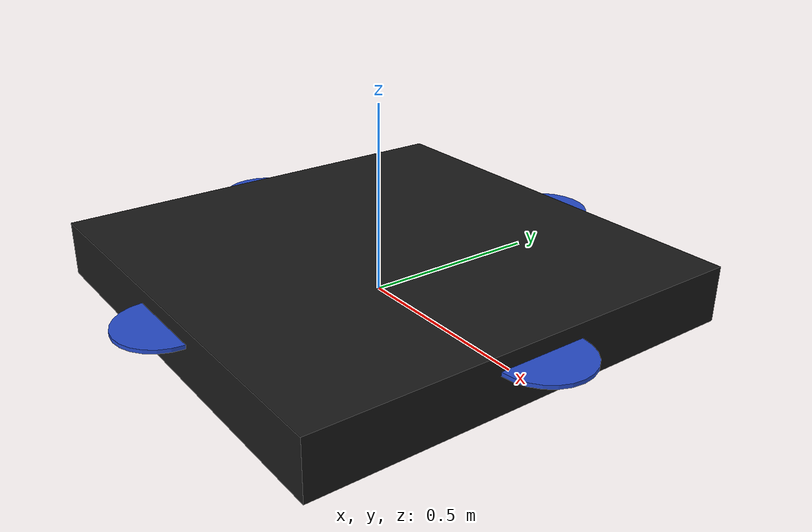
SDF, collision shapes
<sdf version='1.6'>
  <model name='X3'>
    <!-- Model pose in world -->
    <pose>0 0 0.053302 0 0 0</pose>

    <!-- Base link + visuals   -->
    <link name='X3/base_link'>
      <pose>0 0 0 0 0 0</pose>

      <inertial>
        <pose>0 0 0 0 0 0</pose>
        <mass>4.6</mass>
        <inertia>
          <ixx>0.423</ixx>
          <ixy>0</ixy>
          <ixz>0</ixz>
          <iyy>0.423</iyy>
          <iyz>0</iyz>
          <izz>0.828</izz>
        </inertia>
      </inertial>

      <collision name='X3/base_link_inertia_collision'>
        <pose>0 0 0 0 0 0</pose>
        <geometry>
          <box>
            <size>1.2 1.2 0.15</size>
          </box>
        </geometry>
      </collision>

      <visual name='X3/base_link_inertia_visual'>
        <pose>0 0 0 0 0 0</pose>
        <geometry>
          <mesh>
            <scale>1 1 1</scale>
            <uri>model://x3/meshes/x3.dae</uri>
          </mesh>
        </geometry>
      </visual>

      <!-- Octocopter carbon arms for visual reference -->
      <visual name='arm_0'>
        <pose>0.3 0.0 0 0 1.5708 0</pose>
        <geometry>
          <cylinder>
            <radius>0.02</radius>
            <length>0.6</length>
          </cylinder>
        </geometry>
        <material>
          <diffuse>0.1 0.1 0.1 1</diffuse>
        </material>
      </visual>

      <visual name='arm_1'>
        <pose>0.2121 0.2121 0 0 1.5708 0.7854</pose>
        <geometry>
          <cylinder>
            <radius>0.02</radius>
            <length>0.6</length>
          </cylinder>
        </geometry>
        <material>
          <diffuse>0.1 0.1 0.1 1</diffuse>
        </material>
      </visual>

      <visual name='arm_2'>
        <pose>0.0 0.3 0 0 1.5708 1.5708</pose>
        <geometry>
          <cylinder>
            <radius>0.02</radius>
            <length>0.6</length>
          </cylinder>
        </geometry>
        <material>
          <diffuse>0.1 0.1 0.1 1</diffuse>
        </material>
      </visual>

      <visual name='arm_3'>
        <pose>-0.2121 0.2121 0 0 1.5708 2.35619</pose>
        <geometry>
          <cylinder>
            <radius>0.02</radius>
            <length>0.6</length>
          </cylinder>
        </geometry>
        <material>
          <diffuse>0.1 0.1 0.1 1</diffuse>
        </material>
      </visual>

      <visual name='arm_4'>
        <pose>-0.3 0.0 0 0 1.5708 3.14159</pose>
        <geometry>
          <cylinder>
            <radius>0.02</radius>
            <length>0.6</length>
          </cylinder>
        </geometry>
        <material>
          <diffuse>0.1 0.1 0.1 1</diffuse>
        </material>
      </visual>

      <visual name='arm_5'>
        <pose>-0.2121 -0.2121 0 0 1.5708 -2.35619</pose>
        <geometry>
          <cylinder>
            <radius>0.02</radius>
            <length>0.6</length>
          </cylinder>
        </geometry>
        <material>
          <diffuse>0.1 0.1 0.1 1</diffuse>
        </material>
      </visual>

      <visual name='arm_6'>
        <pose>0.0 -0.3 0 0 1.5708 -1.5708</pose>
        <geometry>
          <cylinder>
            <radius>0.02</radius>
            <length>0.6</length>
          </cylinder>
        </geometry>
        <material>
          <diffuse>0.1 0.1 0.1 1</diffuse>
        </material>
      </visual>

      <visual name='arm_7'>
        <pose>0.2121 -0.2121 0 0 1.5708 -0.7854</pose>
        <geometry>
          <cylinder>
            <radius>0.02</radius>
            <length>0.6</length>
          </cylinder>
        </geometry>
        <material>
          <diffuse>0.1 0.1 0.1 1</diffuse>
        </material>
      </visual>

      <!-- IMU Sensor -->
      <sensor name="imu_sensor" type="imu">
        <pose>0 0 0 0 0 0</pose>
        <always_on>1</always_on>
        <update_rate>100</update_rate>
        <topic>/imu/data</topic>
        <imu>
          <angular_velocity>
            <x>
              <noise type="gaussian">
                <mean>0.0</mean>
                <stddev>0.0001</stddev>
              </noise>
            </x>
            <y>
              <noise type="gaussian">
                <mean>0.0</mean>
                <stddev>0.0001</stddev>
              </noise>
            </y>
            <z>
              <noise type="gaussian">
                <mean>0.0</mean>
                <stddev>0.0001</stddev>
              </noise>
            </z>
          </angular_velocity>
          <linear_acceleration>
            <x>
              <noise type="gaussian">
                <mean>0.0</mean>
                <stddev>0.001</stddev>
              </noise>
            </x>
            <y>
              <noise type="gaussian">
                <mean>0.0</mean>
                <stddev>0.001</stddev>
              </noise>
            </y>
            <z>
              <noise type="gaussian">
                <mean>0.0</mean>
                <stddev>0.001</stddev>
              </noise>
            </z>
          </linear_acceleration>
          <enable_orientation>true</enable_orientation>
        </imu>
      </sensor>
    </link>

    <!-- ELP-USB3DGS1200P01-V90 Stereo Camera Configuration              -->
    <!-- Calibrated intrinsics (usb_stereo_camera.yaml):                 -->
    <!--   fx=fy≈369.36, cx≈330.62, cy≈269.47                            -->
    <!-- Resolution: 640x480, Baseline ≈ 0.061m (geometry + SLAM config) -->
    <!-- HFOV ≈ 1.426 rad (derived from fx & width)                      -->
    <!-- Mount: 10 cm forward of body origin, pitched down 45 deg        -->

    <!-- Left Camera Link -->
    <link name='stereo_camera_left_link'>
      <!-- 10 cm forward, +Y (left), pitched down 45 deg -->
      <pose relative_to='X3/base_link'>0.10 0.0305 0 0 0.785398 0</pose>

      <inertial>
        <pose>0 0 0 0 0 0</pose>
        <mass>0.001</mass>
        <inertia>
          <ixx>1e-6</ixx>
          <ixy>0</ixy>
          <ixz>0</ixz>
          <iyy>1e-6</iyy>
          <iyz>0</iyz>
          <izz>1e-6</izz>
        </inertia>
      </inertial>

      <sensor name="camera_left" type="camera">
        <pose>0 0 0 0 0 0</pose>
        <always_on>1</always_on>
        <update_rate>30</update_rate>
        <topic>/camera/left/image_raw</topic>

        <camera>
          <horizontal_fov>1.426</horizontal_fov>
          <distortion>
            <k1>0.0</k1>
            <k2>0.0</k2>
            <k3>0.0</k3>
            <p1>0.0</p1>
            <p2>0.0</p2>
            <center>0.517 0.561</center>
          </distortion>
          <image>
            <width>640</width>
            <height>480</height>
            <format>R8G8B8</format>
          </image>
          <clip>
            <near>0.5</near>
            <far>300</far>
          </clip>
          <noise>
            <type>gaussian</type>
            <mean>0</mean>
            <stddev>0.005</stddev>
          </noise>

          <frame_id>X3/stereo_camera_left_optical</frame_id>
          <camera_info_topic>/camera/left/camera_info</camera_info_topic>
        </camera>
      </sensor>
    </link>

    <!-- Right Camera Link -->
    <link name='stereo_camera_right_link'>
      <!-- 10 cm forward, -Y (right), pitched down 45 deg -->
      <pose relative_to='X3/base_link'>0.10 -0.0305 0 0 0.785398 0</pose>

      <inertial>
        <pose>0 0 0 0 0 0</pose>
        <mass>0.001</mass>
        <inertia>
          <ixx>1e-6</ixx>
          <ixy>0</ixy>
          <ixz>0</ixz>
          <iyy>1e-6</iyy>
          <iyz>0</iyz>
          <izz>1e-6</izz>
        </inertia>
      </inertial>

      <sensor name="camera_right" type="camera">
        <pose>0 0 0 0 0 0</pose>
        <always_on>1</always_on>
        <update_rate>30</update_rate>
        <topic>/camera/right/image_raw</topic>

        <camera>
          <horizontal_fov>1.426</horizontal_fov>
          <distortion>
            <k1>0.0</k1>
            <k2>0.0</k2>
            <k3>0.0</k3>
            <p1>0.0</p1>
            <p2>0.0</p2>
            <center>0.517 0.561</center>
          </distortion>
          <image>
            <width>640</width>
            <height>480</height>
            <format>R8G8B8</format>
          </image>
          <clip>
            <near>0.5</near>
            <far>300</far>
          </clip>
          <noise>
            <type>gaussian</type>
            <mean>0</mean>
            <stddev>0.005</stddev>
          </noise>

          <frame_id>X3/stereo_camera_right_optical</frame_id>
          <camera_info_topic>/camera/right/camera_info</camera_info_topic>
        </camera>
      </sensor>
    </link>

    <!-- Optical frames for ROS convention -->
    <!-- Keep these as a pure transform relative to the camera links -->
    <link name='stereo_camera_left_optical'>
      <pose relative_to='stereo_camera_left_link'>0 0 0 -1.5708 0 -1.5708</pose>
      <inertial>
        <mass>0.001</mass>
        <inertia>
          <ixx>1e-6</ixx><ixy>0</ixy><ixz>0</ixz>
          <iyy>1e-6</iyy><iyz>0</iyz><izz>1e-6</izz>
        </inertia>
      </inertial>
    </link>

    <link name='stereo_camera_right_optical'>
      <pose relative_to='stereo_camera_right_link'>0 0 0 -1.5708 0 -1.5708</pose>
      <inertial>
        <mass>0.001</mass>
        <inertia>
          <ixx>1e-6</ixx><ixy>0</ixy><ixz>0</ixz>
          <iyy>1e-6</iyy><iyz>0</iyz><izz>1e-6</izz>
        </inertia>
      </inertial>
    </link>

    <!-- Fixed joints for stereo cameras -->
    <joint name='stereo_camera_left_joint' type='fixed'>
      <child>stereo_camera_left_link</child>
      <parent>X3/base_link</parent>
    </joint>

    <joint name='stereo_camera_right_joint' type='fixed'>
      <child>stereo_camera_right_link</child>
      <parent>X3/base_link</parent>
    </joint>

    <joint name='stereo_camera_left_optical_joint' type='fixed'>
      <child>stereo_camera_left_optical</child>
      <parent>stereo_camera_left_link</parent>
    </joint>

    <joint name='stereo_camera_right_optical_joint' type='fixed'>
      <child>stereo_camera_right_optical</child>
      <parent>stereo_camera_right_link</parent>
    </joint>

    <!-- Rotors (0..7)         -->

    <link name='X3/rotor_0'>
      <pose relative_to='X3/base_link'>0.6 0.0 0.03 0 0 0</pose>
      <inertial>
        <pose>0 0 0 0 0 0</pose>
        <mass>0.05</mass>
        <inertia>
          <ixx>9.75e-06</ixx>
          <ixy>0</ixy>
          <ixz>0</ixz>
          <iyy>4.17041e-04</iyy>
          <iyz>0</iyz>
          <izz>4.26041e-04</izz>
        </inertia>
      </inertial>
      <collision name='X3/rotor_0_collision'>
        <pose>0 0 0 0 0 0</pose>
        <geometry>
          <cylinder>
            <length>0.01</length>
            <radius>0.12</radius>
          </cylinder>
        </geometry>
      </collision>
      <visual name='X3/rotor_0_visual'>
        <pose>0 0 0 0 0 0</pose>
        <geometry>
          <mesh>
            <scale>0.12 0.12 0.12</scale>
            <uri>model://x3/meshes/propeller_ccw.dae</uri>
          </mesh>
        </geometry>
        <material>
          <script>
            <name>Gazebo/Blue</name>
            <uri>file://media/materials/scripts/gazebo.material</uri>
          </script>
        </material>
      </visual>
    </link>
    <joint name='X3/rotor_0_joint' type='revolute'>
      <child>X3/rotor_0</child>
      <parent>X3/base_link</parent>
      <axis>
        <xyz>0 0 1</xyz>
        <limit>
          <lower>-1e+16</lower>
          <upper>1e+16</upper>
        </limit>
        <use_parent_model_frame>1</use_parent_model_frame>
      </axis>
    </joint>

    <link name='X3/rotor_1'>
      <pose relative_to='X3/base_link'>0.4243 0.4243 0.03 0 0 0</pose>
      <inertial>
        <pose>0 0 0 0 0 0</pose>
        <mass>0.05</mass>
        <inertia>
          <ixx>9.75e-06</ixx>
          <ixy>0</ixy>
          <ixz>0</ixz>
          <iyy>4.17041e-04</iyy>
          <iyz>0</iyz>
          <izz>4.26041e-04</izz>
        </inertia>
      </inertial>
      <collision name='X3/rotor_1_collision'>
        <pose>0 0 0 0 0 0</pose>
        <geometry>
          <cylinder>
            <length>0.01</length>
            <radius>0.12</radius>
          </cylinder>
        </geometry>
      </collision>
      <visual name='X3/rotor_1_visual'>
        <pose>0 0 0 0 0 0</pose>
        <geometry>
          <mesh>
            <scale>0.12 0.12 0.12</scale>
            <uri>model://x3/meshes/propeller_cw.dae</uri>
          </mesh>
        </geometry>
        <material>
          <script>
            <name>Gazebo/Red</name>
            <uri>file://media/materials/scripts/gazebo.material</uri>
          </script>
        </material>
      </visual>
    </link>
    <joint name='X3/rotor_1_joint' type='revolute'>
      <child>X3/rotor_1</child>
      <parent>X3/base_link</parent>
      <axis>
        <xyz>0 0 1</xyz>
        <limit>
          <lower>-1e+16</lower>
          <upper>1e+16</upper>
        </limit>
        <use_parent_model_frame>1</use_parent_model_frame>
      </axis>
    </joint>

    <link name='X3/rotor_2'>
      <pose relative_to='X3/base_link'>0.0 0.6 0.03 0 0 0</pose>
      <inertial>
        <pose>0 0 0 0 0 0</pose>
        <mass>0.05</mass>
        <inertia>
          <ixx>9.75e-06</ixx>
          <ixy>0</ixy>
          <ixz>0</ixz>
          <iyy>4.17041e-04</iyy>
          <iyz>0</iyz>
          <izz>4.26041e-04</izz>
        </inertia>
      </inertial>
      <collision name='X3/rotor_2_collision'>
        <pose>0 0 0 0 0 0</pose>
        <geometry>
          <cylinder>
            <length>0.01</length>
            <radius>0.12</radius>
          </cylinder>
        </geometry>
      </collision>
      <visual name='X3/rotor_2_visual'>
        <pose>0 0 0 0 0 0</pose>
        <geometry>
          <mesh>
            <scale>0.12 0.12 0.12</scale>
            <uri>model://x3/meshes/propeller_ccw.dae</uri>
          </mesh>
        </geometry>
        <material>
          <script>
            <name>Gazebo/Blue</name>
            <uri>file://media/materials/scripts/gazebo.material</uri>
          </script>
        </material>
      </visual>
    </link>
    <joint name='X3/rotor_2_joint' type='revolute'>
      <child>X3/rotor_2</child>
      <parent>X3/base_link</parent>
      <axis>
        <xyz>0 0 1</xyz>
        <limit>
          <lower>-1e+16</lower>
          <upper>1e+16</upper>
        </limit>
        <use_parent_model_frame>1</use_parent_model_frame>
      </axis>
    </joint>

    <link name='X3/rotor_3'>
      <pose relative_to='X3/base_link'>-0.4243 0.4243 0.03 0 0 0</pose>
      <inertial>
        <pose>0 0 0 0 0 0</pose>
        <mass>0.05</mass>
        <inertia>
          <ixx>9.75e-06</ixx>
          <ixy>0</ixy>
          <ixz>0</ixz>
          <iyy>4.17041e-04</iyy>
          <iyz>0</iyz>
          <izz>4.26041e-04</izz>
        </inertia>
      </inertial>
      <collision name='X3/rotor_3_collision'>
        <pose>0 0 0 0 0 0</pose>
        <geometry>
          <cylinder>
            <length>0.01</length>
            <radius>0.12</radius>
          </cylinder>
        </geometry>
      </collision>
      <visual name='X3/rotor_3_visual'>
        <pose>0 0 0 0 0 0</pose>
        <geometry>
          <mesh>
            <scale>0.12 0.12 0.12</scale>
            <uri>model://x3/meshes/propeller_cw.dae</uri>
          </mesh>
        </geometry>
        <material>
          <script>
            <name>Gazebo/Red</name>
            <uri>file://media/materials/scripts/gazebo.material</uri>
          </script>
        </material>
      </visual>
    </link>
    <joint name='X3/rotor_3_joint' type='revolute'>
      <child>X3/rotor_3</child>
      <parent>X3/base_link</parent>
      <axis>
        <xyz>0 0 1</xyz>
        <limit>
          <lower>-1e+16</lower>
          <upper>1e+16</upper>
        </limit>
        <use_parent_model_frame>1</use_parent_model_frame>
      </axis>
    </joint>

    <link name='X3/rotor_4'>
      <pose relative_to='X3/base_link'>-0.6 0.0 0.03 0 0 0</pose>
      <inertial>
        <pose>0 0 0 0 0 0</pose>
        <mass>0.05</mass>
        <inertia>
          <ixx>9.75e-06</ixx>
          <ixy>0</ixy>
          <ixz>0</ixz>
          <iyy>4.17041e-04</iyy>
          <iyz>0</iyz>
          <izz>4.26041e-04</izz>
        </inertia>
      </inertial>
      <collision name='X3/rotor_4_collision'>
        <pose>0 0 0 0 0 0</pose>
        <geometry>
          <cylinder>
            <length>0.01</length>
            <radius>0.12</radius>
          </cylinder>
        </geometry>
      </collision>
      <visual name='X3/rotor_4_visual'>
        <pose>0 0 0 0 0 0</pose>
        <geometry>
          <mesh>
            <scale>0.12 0.12 0.12</scale>
            <uri>model://x3/meshes/propeller_ccw.dae</uri>
          </mesh>
        </geometry>
        <material>
          <script>
            <name>Gazebo/Blue</name>
            <uri>file://media/materials/scripts/gazebo.material</uri>
          </script>
        </material>
      </visual>
    </link>
    <joint name='X3/rotor_4_joint' type='revolute'>
      <child>X3/rotor_4</child>
      <parent>X3/base_link</parent>
      <axis>
        <xyz>0 0 1</xyz>
        <limit>
          <lower>-1e+16</lower>
          <upper>1e+16</upper>
        </limit>
        <use_parent_model_frame>1</use_parent_model_frame>
      </axis>
    </joint>

    <link name='X3/rotor_5'>
      <pose relative_to='X3/base_link'>-0.4243 -0.4243 0.03 0 0 0</pose>
      <inertial>
        <pose>0 0 0 0 0 0</pose>
        <mass>0.05</mass>
        <inertia>
          <ixx>9.75e-06</ixx>
          <ixy>0</ixy>
          <ixz>0</ixz>
          <iyy>4.17041e-04</iyy>
          <iyz>0</iyz>
          <izz>4.26041e-04</izz>
        </inertia>
      </inertial>
      <collision name='X3/rotor_5_collision'>
        <pose>0 0 0 0 0 0</pose>
        <geometry>
          <cylinder>
            <length>0.01</length>
            <radius>0.12</radius>
          </cylinder>
        </geometry>
      </collision>
      <visual name='X3/rotor_5_visual'>
        <pose>0 0 0 0 0 0</pose>
        <geometry>
          <mesh>
            <scale>0.12 0.12 0.12</scale>
            <uri>model://x3/meshes/propeller_cw.dae</uri>
          </mesh>
        </geometry>
        <material>
          <script>
            <name>Gazebo/Red</name>
            <uri>file://media/materials/scripts/gazebo.material</uri>
          </script>
        </material>
      </visual>
    </link>
    <joint name='X3/rotor_5_joint' type='revolute'>
      <child>X3/rotor_5</child>
      <parent>X3/base_link</parent>
      <axis>
        <xyz>0 0 1</xyz>
        <limit>
          <lower>-1e+16</lower>
          <upper>1e+16</upper>
        </limit>
        <use_parent_model_frame>1</use_parent_model_frame>
      </axis>
    </joint>

    <link name='X3/rotor_6'>
      <pose relative_to='X3/base_link'>0.0 -0.6 0.03 0 0 0</pose>
      <inertial>
        <pose>0 0 0 0 0 0</pose>
        <mass>0.05</mass>
        <inertia>
          <ixx>9.75e-06</ixx>
          <ixy>0</ixy>
          <ixz>0</ixz>
          <iyy>4.17041e-04</iyy>
          <iyz>0</iyz>
          <izz>4.26041e-04</izz>
        </inertia>
      </inertial>
      <collision name='X3/rotor_6_collision'>
        <pose>0 0 0 0 0 0</pose>
        <geometry>
          <cylinder>
            <length>0.01</length>
            <radius>0.12</radius>
          </cylinder>
        </geometry>
      </collision>
      <visual name='X3/rotor_6_visual'>
        <pose>0 0 0 0 0 0</pose>
        <geometry>
          <mesh>
            <scale>0.12 0.12 0.12</scale>
            <uri>model://x3/meshes/propeller_ccw.dae</uri>
          </mesh>
        </geometry>
        <material>
          <script>
            <name>Gazebo/Blue</name>
            <uri>file://media/materials/scripts/gazebo.material</uri>
          </script>
        </material>
      </visual>
    </link>
    <joint name='X3/rotor_6_joint' type='revolute'>
      <child>X3/rotor_6</child>
      <parent>X3/base_link</parent>
      <axis>
        <xyz>0 0 1</xyz>
        <limit>
          <lower>-1e+16</lower>
          <upper>1e+16</upper>
        </limit>
        <use_parent_model_frame>1</use_parent_model_frame>
      </axis>
    </joint>

    <link name='X3/rotor_7'>
      <pose relative_to='X3/base_link'>0.4243 -0.4243 0.03 0 0 0</pose>
      <inertial>
        <pose>0 0 0 0 0 0</pose>
        <mass>0.05</mass>
        <inertia>
          <ixx>9.75e-06</ixx>
          <ixy>0</ixy>
          <ixz>0</ixz>
          <iyy>4.17041e-04</iyy>
          <iyz>0</iyz>
          <izz>4.26041e-04</izz>
        </inertia>
      </inertial>
      <collision name='X3/rotor_7_collision'>
        <pose>0 0 0 0 0 0</pose>
        <geometry>
          <cylinder>
            <length>0.01</length>
            <radius>0.12</radius>
          </cylinder>
        </geometry>
      </collision>
      <visual name='X3/rotor_7_visual'>
        <pose>0 0 0 0 0 0</pose>
        <geometry>
          <mesh>
            <scale>0.12 0.12 0.12</scale>
            <uri>model://x3/meshes/propeller_cw.dae</uri>
          </mesh>
        </geometry>
        <material>
          <script>
            <name>Gazebo/Red</name>
            <uri>file://media/materials/scripts/gazebo.material</uri>
          </script>
        </material>
      </visual>
    </link>
    <joint name='X3/rotor_7_joint' type='revolute'>
      <child>X3/rotor_7</child>
      <parent>X3/base_link</parent>
      <axis>
        <xyz>0 0 1</xyz>
        <limit>
          <lower>-1e+16</lower>
          <upper>1e+16</upper>
        </limit>
        <use_parent_model_frame>1</use_parent_model_frame>
      </axis>
    </joint>

    <!-- Odometry publisher    -->
    <plugin filename="gz-sim8-odometry-publisher-system"
            name="gz::sim::systems::OdometryPublisher">
      <odom_frame>world</odom_frame>
      <robot_base_frame>X3/base_link</robot_base_frame>
      <dimensions>3</dimensions>
      <odom_topic>/X3/odometry</odom_topic>
      <odom_publish_frequency>50</odom_publish_frequency>
    </plugin>

  </model>
</sdf>
